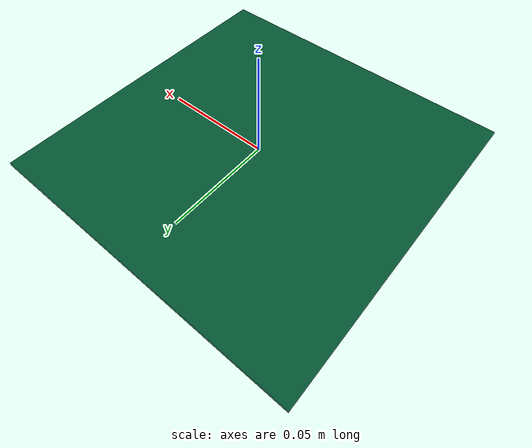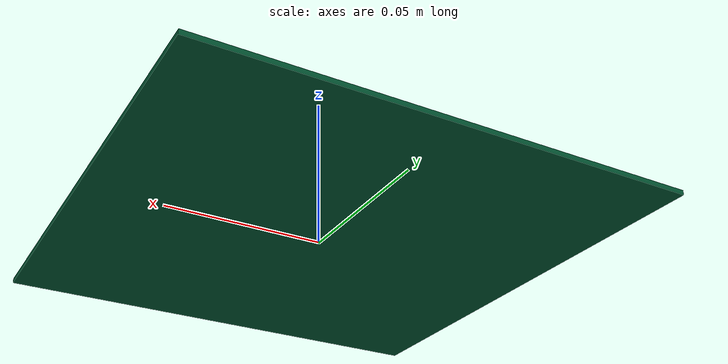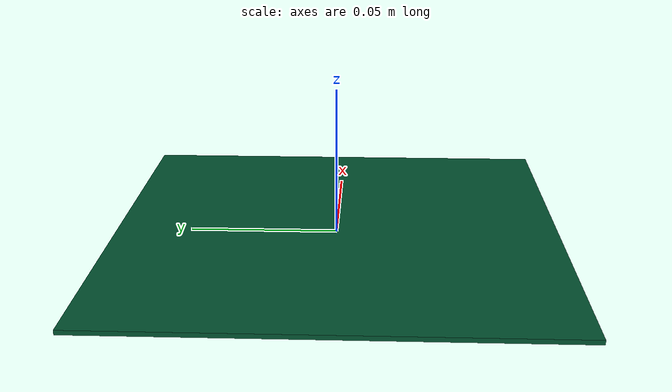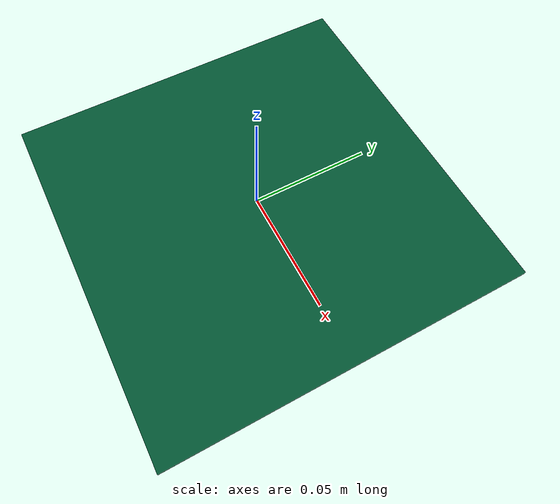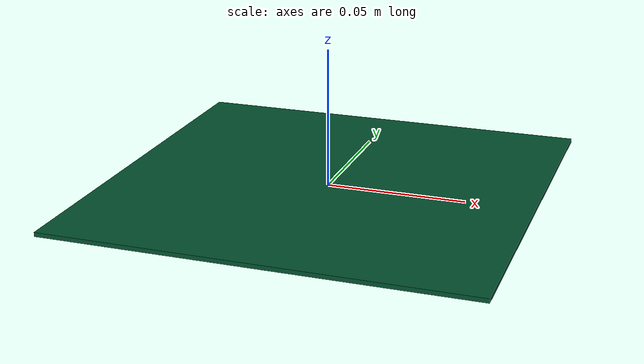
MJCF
<?xml version="1.0" ?>
<mujoco model="square_mat">
  <asset>
    <material name="Material" specular="0.4000000000000001" shininess="0.001" rgba="0.0 0.31 0.18 1.0"/>
    <mesh file="square_mat.obj" scale="0.075 0.075 0.075"/>
    <mesh file="square_mat/square_mat_collision_0.obj" scale="0.075 0.075 0.075"/>
  </asset>
  <worldbody>
    <body name="square_mat">
      <inertial pos="0 0 0.000750" mass="0.02" diaginertia="0.0008 0.0008 0.0005"/>
      <geom material="Material" mesh="square_mat" class="visual"/>
      <geom mesh="square_mat_collision_0" class="collision"/>
      <site class="grasppoint" pos="0.0000 0.0000 0.0009"/>
      <site class="grasppoint" pos="0.0000 0.0000 0.0012"/>
      <site class="grasppoint" pos="0.0000 0.0000 0.0014"/>
          <site class="keypoint" pos="-0.0750 -0.0750 0.0000"/>
      <site class="keypoint" pos="0.0750 0.0750 0.0000"/>
      <site class="keypoint" pos="-0.0750 0.0750 0.0000"/>
      <site class="keypoint" pos="0.0750 -0.0750 0.0000"/>
      <site class="placepoint" pos="0.0000 0.0000 0.04500"/>
</body>
  </worldbody>
  <compiler boundmass="0.015" boundinertia="1e-05" angle="radian"/>
  <default>
    <default class="visual">
      <geom group="2" type="mesh" contype="0" conaffinity="0" density="50"/>
          <default class="keypoint"><site type="sphere" size="0.01" group="3" rgba="1 0 0 1"/></default>
      <default class="placepoint"><site type="sphere" size="0.01" group="2" rgba="0 0 1 0"/></default>
</default>
    <default class="collision">
      <geom group="3" type="mesh" density="50" friction="1.5 0.1 0.1" solimp="0.9 0.95 0.001" solref="0.02 1"/>
    </default>
    <default class="grasppoint">
      <site type="sphere" size="0.005" group="4" rgba="0 0 1 1"/>
    </default>
  </default>
</mujoco>
